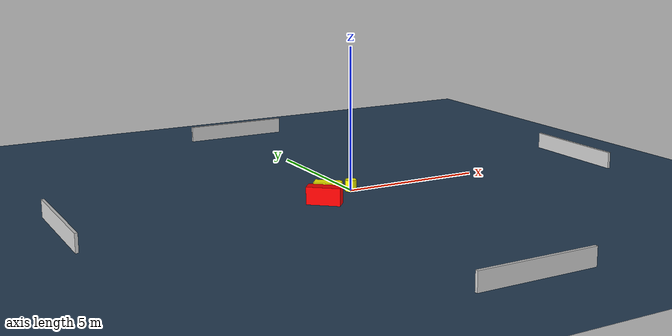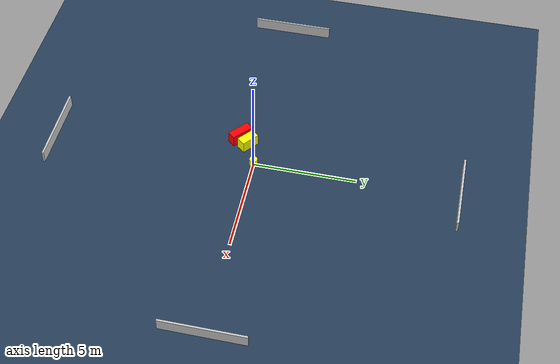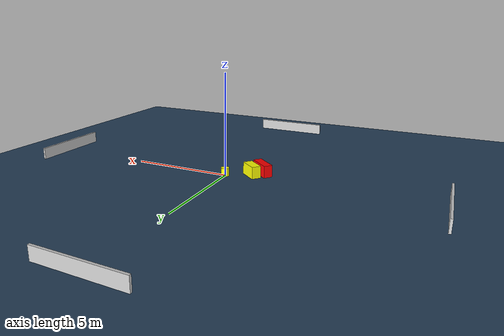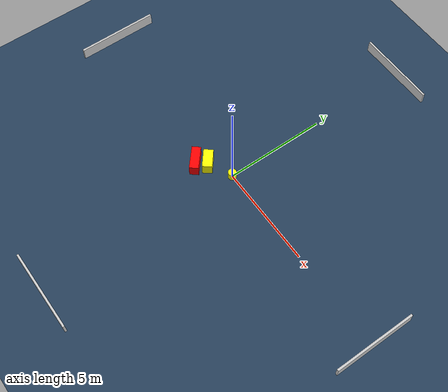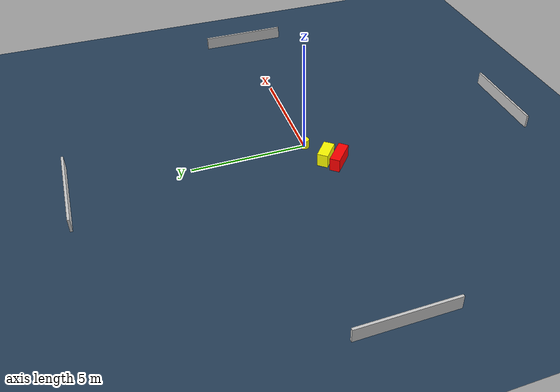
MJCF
<?xml version="1.0" ?>
<mujoco model="generated_environment">
  <option timestep="0.01" integrator="RK4" cone="elliptic"/>
  <default>
    <geom density="1"/>
  </default>
  <asset>
    <texture builtin="gradient" height="3072" name="skybox" rgb1="0.3 0.5 0.7" rgb2="0 0 0" type="skybox" width="512"/>
    <texture builtin="checker" height="300" name="groundplane" rgb1="0.2 0.3 0.4" rgb2="0.1 0.2 0.3" type="2d" width="300"/>
    <material name="groundplane" reflectance="0.2" texrepeat="5 5" texture="groundplane"/>
  </asset>
  <worldbody>
    <light dir="0 0 -1" directional="true" pos="0 0 1.5"/>
    <geom condim="3" friction="0.5 0.005 0.001" material="groundplane" name="floor" pos="0 0 0" size="0 0 0.05" type="plane"/>
    <body name="walls">
      <geom name="wall_1" condim="4" pos="-10.0 0.0 0.3" rgba="0.800000011920929 0.800000011920929 0.800000011920929 1.0" size="0.05 2.0 0.3" type="box"/>
      <geom name="wall_2" condim="4" pos="10.0 0.0 0.3" rgba="0.800000011920929 0.800000011920929 0.800000011920929 1.0" size="0.05 2.0 0.3" type="box"/>
      <geom name="wall_3" condim="4" pos="0.0 -10.0 0.3" rgba="0.800000011920929 0.800000011920929 0.800000011920929 1.0" size="2.0 0.05 0.3" type="box"/>
      <geom name="wall_4" condim="4" pos="0.0 10.0 0.3" rgba="0.800000011920929 0.800000011920929 0.800000011920929 1.0" size="2.0 0.05 0.3" type="box"/>
    </body>
    <body name="robot">
      <joint name="joint_x" type="slide" pos="0 0 0" axis="1 0 0"/>
      <joint name="joint_y" type="slide" pos="0 0 0" axis="0 1 0"/>
      <geom name="robot" type="cylinder" pos="0.0 0.0 0.2" size="0.2 0.2 0.0" mass="5.0" friction="1.0 0.005 0.0001" condim="4" rgba="1.0 1.0 0.0 1.0"/>
    </body>
    <body name="obstacle_1_movable">
      <geom name="obstacle_1_movable" condim="4" pos="-1.189631014856097 -0.539699526432289 0.3" euler="0 0 320.88849401369845" friction="0.0 0.005 0.001" rgba="1.0 1.0 0.0 1.0" size="0.4634269166114275 0.23411759416741457 0.3" type="box" mass="0.1"/>
      <joint type="free"/>
    </body>
    <body name="obstacle_2_static">
      <geom name="obstacle_2_static" condim="4" pos="-1.562518261892128 -0.9963832358480625 0.3" euler="0 0 319.21722632905687" friction="0.0 0.005 0.001" rgba="1.0 0.0 0.0 1.0" size="0.5772722186004369 0.2178764019060843 0.3" type="box"/>
    </body>
  </worldbody>
  <actuator>
    <motor name="actuator_x" joint="joint_x" gear="1" ctrlrange="-1 1"/>
    <motor name="actuator_y" joint="joint_y" gear="1" ctrlrange="-1 1"/>
  </actuator>
</mujoco>
